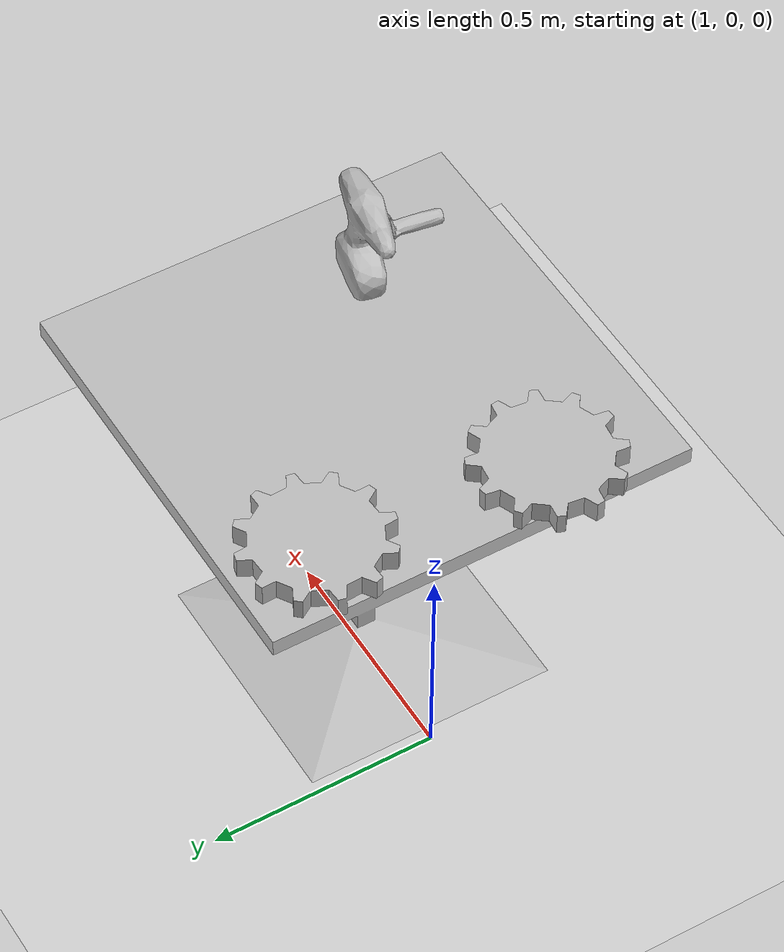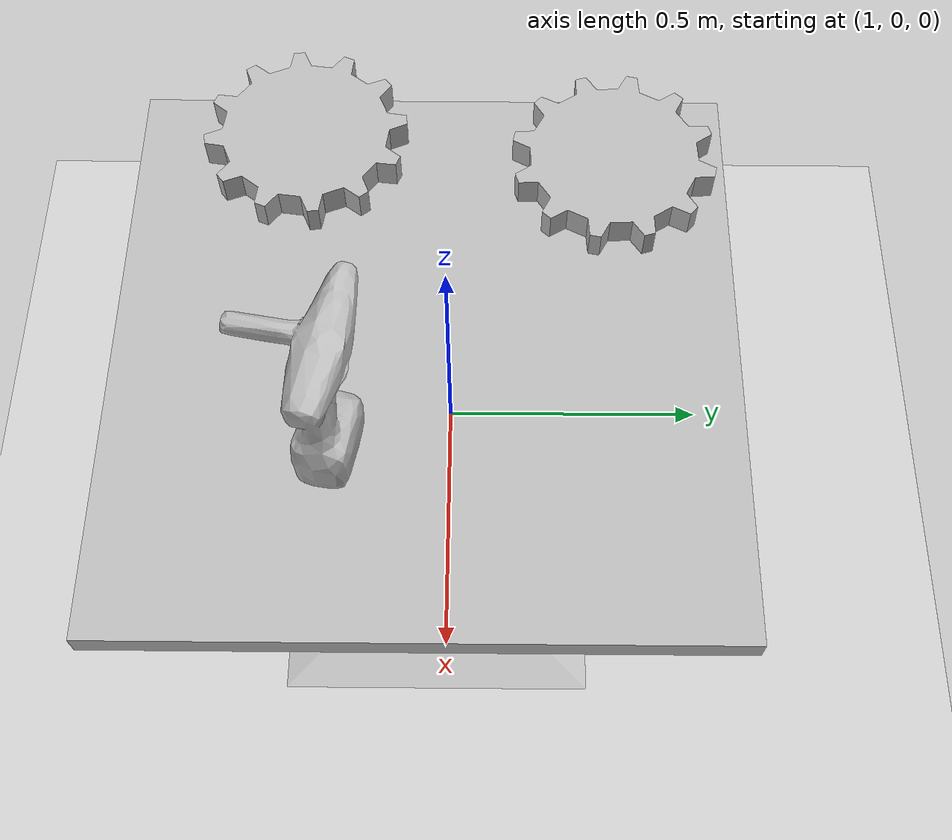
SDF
<sdf version="1.6">
 <world name="default">
  <model name="ground_plane">
   <static>1</static>
   <link name="link">
    <collision name="collision">
     <geometry><plane><normal>0 0 1</normal><size>100 100</size></plane></geometry>
     <surface><friction><ode><mu>100</mu><mu2>50</mu2></ode></friction></surface>
    </collision>
    <visual name="visual">
     <cast_shadows>0</cast_shadows>
     <geometry><plane><normal>0 0 1</normal><size>100 100</size></plane></geometry>
     <material>
      <script><uri>file://media/materials/scripts/gazebo.material</uri><name>Gazebo/Grey</name></script>
     </material>
    </visual>
   </link>
  </model>
  <gravity>0 0 -9.8</gravity>
  <magnetic_field>6e-06 2.3e-05 -4.2e-05</magnetic_field>
  <atmosphere type="adiabatic"/>
  <physics name="default_physics" default="0" type="ode">
   <max_step_size>0.001</max_step_size>
   <real_time_factor>1</real_time_factor>
   <real_time_update_rate>1000</real_time_update_rate>
  </physics>
  <scene><ambient>0.4 0.4 0.4 1</ambient><background>0.7 0.7 0.7 1</background><shadows>1</shadows></scene>
  <spherical_coordinates>
   <surface_model>EARTH_WGS84</surface_model>
   <latitude_deg>0</latitude_deg>
   <longitude_deg>0</longitude_deg>
   <elevation>0</elevation>
   <heading_deg>0</heading_deg>
  </spherical_coordinates>
  <light name="user_point_light_0" type="point">
   <pose>0.152939 -1.04387 1 0 -0 0</pose>
   <diffuse>0.5 0.5 0.5 1</diffuse>
   <specular>0.1 0.1 0.1 1</specular>
   <attenuation>
    <range>20</range>
    <constant>0.5</constant>
    <linear>0.01</linear>
    <quadratic>0.001</quadratic>
   </attenuation>
   <cast_shadows>0</cast_shadows>
   <direction>0 0 -1</direction>
  </light>
  <model name="cafe_table">
   <static>1</static>
   <link name="link">
    <collision name="surface">
     <pose>0 0 0.755 0 -0 0</pose>
     <geometry><box><size>0.913 0.913 0.04</size></box></geometry>
    </collision>
    <collision name="column">
     <pose>0 0 0.37 0 -0 0</pose>
     <geometry><box><size>0.042 0.042 0.74</size></box></geometry>
    </collision>
    <collision name="base">
     <pose>0 0 0.02 0 -0 0</pose>
     <geometry><box><size>0.56 0.56 0.04</size></box></geometry>
    </collision>
    <visual name="visual">
     <geometry><mesh><uri>model://cafe_table/meshes/cafe_table.dae</uri><scale>1 1 1</scale></mesh></geometry>
    </visual>
   </link>
   <pose>1.3052 -0.016556 0 0 -0 0</pose>
  </model>
  <model name="drill">
   <link name="link">
    <inertial>
     <pose>-0.00637 -0.008 0.13254 0 -0 0</pose>
     <inertia>
      <ixx>0.0133113</ixx>
      <ixy>-0.00030365</ixy>
      <ixz>-0.00034148</ixz>
      <iyy>0.0115766</iyy>
      <iyz>0.00088073</iyz>
      <izz>0.00378028</izz>
     </inertia>
     <mass>1.50252</mass>
    </inertial>
    <collision name="collision">
     <pose>0 0 -0.09 0 -0 0</pose>
     <geometry>
      <mesh><uri>model://cordless_drill/meshes/cordless_drill.stl</uri><scale>1 1 1</scale></mesh>
     </geometry>
    </collision>
    <visual name="visual">
     <pose>0 0 -0.09 0 -0 0</pose>
     <geometry>
      <mesh><uri>model://cordless_drill/meshes/cordless_drill.dae</uri><scale>1 1 1</scale></mesh>
     </geometry>
    </visual>
   </link>
   <pose>1.50075 -0.131433 0.821876 -0.108771 -0.015517 1.34988</pose>
  </model>
  <model name="gear_part_1">
   <link name="link">
    <inertial>
     <pose>0 0 0.005875 0 -0 0</pose>
     <mass>0.5</mass>
     <inertia>
      <ixx>0.000198203</ixx>
      <ixy>0</ixy>
      <ixz>0</ixz>
      <iyy>0.000198203</iyy>
      <iyz>0</iyz>
      <izz>0.000384405</izz>
     </inertia>
    </inertial>
    <collision name="collision">
     <pose>0 0 0.005875 0 -0 0</pose>
     <geometry><cylinder><length>0.012</length><radius>0.0392125</radius></cylinder></geometry>
     <surface><contact><ode><max_vel>0.1</max_vel><min_depth>0.001</min_depth></ode></contact></surface>
    </collision>
    <visual name="visual">
     <geometry><mesh><uri>model://gear_part/meshes/gear.dae</uri><scale>1 1 1</scale></mesh></geometry>
     <material>
      <script>
       <uri>model://arm_part/materials/scripts</uri>
       <uri>model://arm_part/materials/textures</uri>
       <name>ArmPart/Diffuse</name>
      </script>
     </material>
    </visual>
   </link>
   <pose>0.946535 -0.21052 0.774551 0 -0 0</pose>
  </model>
  <model name="gear_part_2">
   <link name="link">
    <inertial>
     <pose>0 0 0.005875 0 -0 0</pose>
     <mass>0.5</mass>
     <inertia>
      <ixx>0.000198203</ixx>
      <ixy>0</ixy>
      <ixz>0</ixz>
      <iyy>0.000198203</iyy>
      <iyz>0</iyz>
      <izz>0.000384405</izz>
     </inertia>
    </inertial>
    <collision name="collision">
     <pose>0 0 0.005875 0 -0 0</pose>
     <geometry><cylinder><length>0.012</length><radius>0.0392125</radius></cylinder></geometry>
     <surface><contact><ode><max_vel>0.1</max_vel><min_depth>0.001</min_depth></ode></contact></surface>
    </collision>
    <visual name="visual">
     <geometry><mesh><uri>model://gear_part/meshes/gear.dae</uri><scale>1 1 1</scale></mesh></geometry>
     <material>
      <script>
       <uri>model://arm_part/materials/scripts</uri>
       <uri>model://arm_part/materials/textures</uri>
       <name>ArmPart/Diffuse</name>
      </script>
     </material>
    </visual>
   </link>
   <pose>0.990992 0.265702 0.774935 -0.004724 -0.001661 -1.39143</pose>
  </model>
  <model name="coke_can">
   <link name="link">
    <inertial>
     <mass>0.39</mass>
     <inertia><ixx>0.00058</ixx><ixy>0</ixy><ixz>0</ixz><iyy>0.00058</iyy><iyz>0</iyz><izz>0.00019</izz></inertia>
    </inertial>
    <collision name="collision">
     <pose>0 0 -0.46 0 -0 0</pose>
     <geometry><mesh><uri>model://coke_can/meshes/coke_can.dae</uri><scale>1 1 1</scale></mesh></geometry>
    </collision>
    <visual name="visual">
     <pose>0 0 -0.46 0 -0 0</pose>
     <geometry><mesh><uri>model://coke_can/meshes/coke_can.dae</uri><scale>1 1 1</scale></mesh></geometry>
    </visual>
   </link>
   <pose>1.57187 0.233456 0.761757 -0.042211 0.015161 -1.97939</pose>
  </model>
 </world>
</sdf>
